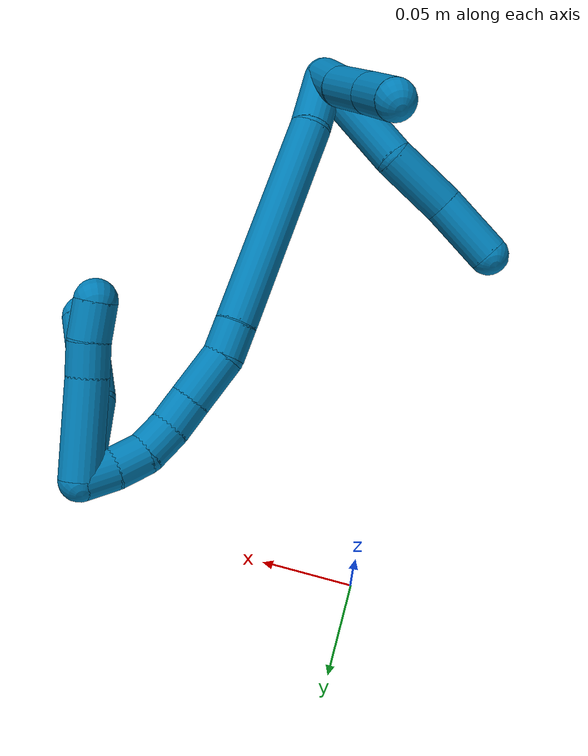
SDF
<sdf version="1.7">
 <world name="default">
  <model name="9">
   <static>0</static>
   <link name="9">
    <collision name="collision-cylinder-e_1_2_8">
     <pose>-0.017697 -0.012523 0.024822 0.467239 -0.566849 -0.138401</pose>
     <geometry><cylinder><radius>0.0125</radius><length>0.065912</length></cylinder></geometry>
     <surface>
      <friction><ode><mu>1.16</mu><mu2>1.16</mu2><slip1>0</slip1><slip2>0</slip2></ode></friction>
      <contact><ode><kp>1e+06</kp><kd>1</kd><max_vel>0</max_vel><min_depth>0.001</min_depth></ode></contact>
     </surface>
    </collision>
    <visual name="visual-cylinder-e_1_2_8">
     <pose>-0.017697 -0.012523 0.024822 0.467239 -0.566849 -0.138401</pose>
     <geometry><cylinder><radius>0.0125</radius><length>0.065912</length></cylinder></geometry>
     <material><ambient>0 0.490196 0.709804 1</ambient></material>
    </visual>
    <collision name="collision-cylinder-e_2_8_9">
     <pose>-0.050174 -0.036201 0.060479 0.799948 -0.759961 -0.334539</pose>
     <geometry><cylinder><radius>0.0125</radius><length>0.042911</length></cylinder></geometry>
     <surface>
      <friction><ode><mu>1.16</mu><mu2>1.16</mu2><slip1>0</slip1><slip2>0</slip2></ode></friction>
      <contact><ode><kp>1e+06</kp><kd>1</kd><max_vel>0</max_vel><min_depth>0.001</min_depth></ode></contact>
     </surface>
    </collision>
    <visual name="visual-cylinder-e_2_8_9">
     <pose>-0.050174 -0.036201 0.060479 0.799948 -0.759961 -0.334539</pose>
     <geometry><cylinder><radius>0.0125</radius><length>0.042911</length></cylinder></geometry>
     <material><ambient>0 0.490196 0.709804 1</ambient></material>
    </visual>
    <collision name="collision-cylinder-e_3_9_6">
     <pose>-0.077674 -0.056136 0.084918 0.573154 -0.665956 -0.203138</pose>
     <geometry><cylinder><radius>0.0125</radius><length>0.041177</length></cylinder></geometry>
     <surface>
      <friction><ode><mu>1.16</mu><mu2>1.16</mu2><slip1>0</slip1><slip2>0</slip2></ode></friction>
      <contact><ode><kp>1e+06</kp><kd>1</kd><max_vel>0</max_vel><min_depth>0.001</min_depth></ode></contact>
     </surface>
    </collision>
    <visual name="visual-cylinder-e_3_9_6">
     <pose>-0.077674 -0.056136 0.084918 0.573154 -0.665956 -0.203138</pose>
     <geometry><cylinder><radius>0.0125</radius><length>0.041177</length></cylinder></geometry>
     <material><ambient>0 0.490196 0.709804 1</ambient></material>
    </visual>
    <collision name="collision-cylinder-e_1_2_10">
     <pose>0.003931 -0.001992 0.013199 0.149799 0.286372 0.021637</pose>
     <geometry><cylinder><radius>0.0125</radius><length>0.027831</length></cylinder></geometry>
     <surface>
      <friction><ode><mu>1.16</mu><mu2>1.16</mu2><slip1>0</slip1><slip2>0</slip2></ode></friction>
      <contact><ode><kp>1e+06</kp><kd>1</kd><max_vel>0</max_vel><min_depth>0.001</min_depth></ode></contact>
     </surface>
    </collision>
    <visual name="visual-cylinder-e_1_2_10">
     <pose>0.003931 -0.001992 0.013199 0.149799 0.286372 0.021637</pose>
     <geometry><cylinder><radius>0.0125</radius><length>0.027831</length></cylinder></geometry>
     <material><ambient>0 0.490196 0.709804 1</ambient></material>
    </visual>
    <collision name="collision-cylinder-e_2_10_11">
     <pose>0.014596 -0.00858 0.044358 0.250523 0.348455 0.04432</pose>
     <geometry><cylinder><radius>0.0125</radius><length>0.039446</length></cylinder></geometry>
     <surface>
      <friction><ode><mu>1.16</mu><mu2>1.16</mu2><slip1>0</slip1><slip2>0</slip2></ode></friction>
      <contact><ode><kp>1e+06</kp><kd>1</kd><max_vel>0</max_vel><min_depth>0.001</min_depth></ode></contact>
     </surface>
    </collision>
    <visual name="visual-cylinder-e_2_10_11">
     <pose>0.014596 -0.00858 0.044358 0.250523 0.348455 0.04432</pose>
     <geometry><cylinder><radius>0.0125</radius><length>0.039446</length></cylinder></geometry>
     <material><ambient>0 0.490196 0.709804 1</ambient></material>
    </visual>
    <collision name="collision-cylinder-e_3_11_5">
     <pose>0.027193 -0.016251 0.077279 0.202744 0.366449 0.037694</pose>
     <geometry><cylinder><radius>0.0125</radius><length>0.032723</length></cylinder></geometry>
     <surface>
      <friction><ode><mu>1.16</mu><mu2>1.16</mu2><slip1>0</slip1><slip2>0</slip2></ode></friction>
      <contact><ode><kp>1e+06</kp><kd>1</kd><max_vel>0</max_vel><min_depth>0.001</min_depth></ode></contact>
     </surface>
    </collision>
    <visual name="visual-cylinder-e_3_11_5">
     <pose>0.027193 -0.016251 0.077279 0.202744 0.366449 0.037694</pose>
     <geometry><cylinder><radius>0.0125</radius><length>0.032723</length></cylinder></geometry>
     <material><ambient>0 0.490196 0.709804 1</ambient></material>
    </visual>
    <collision name="collision-cylinder-e_1_2_12">
     <pose>-0.005823 0.009501 0.015116 -0.561159 -0.315259 0.091548</pose>
     <geometry><cylinder><radius>0.0125</radius><length>0.03756</length></cylinder></geometry>
     <surface>
      <friction><ode><mu>1.16</mu><mu2>1.16</mu2><slip1>0</slip1><slip2>0</slip2></ode></friction>
      <contact><ode><kp>1e+06</kp><kd>1</kd><max_vel>0</max_vel><min_depth>0.001</min_depth></ode></contact>
     </surface>
    </collision>
    <visual name="visual-cylinder-e_1_2_12">
     <pose>-0.005823 0.009501 0.015116 -0.561159 -0.315259 0.091548</pose>
     <geometry><cylinder><radius>0.0125</radius><length>0.03756</length></cylinder></geometry>
     <material><ambient>0 0.490196 0.709804 1</ambient></material>
    </visual>
    <collision name="collision-cylinder-e_2_12_13">
     <pose>-0.040695 0.057821 0.073557 -0.73058 -0.463149 0.179883</pose>
     <geometry><cylinder><radius>0.0125</radius><length>0.130042</length></cylinder></geometry>
     <surface>
      <friction><ode><mu>1.16</mu><mu2>1.16</mu2><slip1>0</slip1><slip2>0</slip2></ode></friction>
      <contact><ode><kp>1e+06</kp><kd>1</kd><max_vel>0</max_vel><min_depth>0.001</min_depth></ode></contact>
     </surface>
    </collision>
    <visual name="visual-cylinder-e_2_12_13">
     <pose>-0.040695 0.057821 0.073557 -0.73058 -0.463149 0.179883</pose>
     <geometry><cylinder><radius>0.0125</radius><length>0.130042</length></cylinder></geometry>
     <material><ambient>0 0.490196 0.709804 1</ambient></material>
    </visual>
    <collision name="collision-cylinder-e_3_13_14">
     <pose>-0.074893 0.10286 0.123199 -0.777871 -0.526057 0.219808</pose>
     <geometry><cylinder><radius>0.0125</radius><length>0.020505</length></cylinder></geometry>
     <surface>
      <friction><ode><mu>1.16</mu><mu2>1.16</mu2><slip1>0</slip1><slip2>0</slip2></ode></friction>
      <contact><ode><kp>1e+06</kp><kd>1</kd><max_vel>0</max_vel><min_depth>0.001</min_depth></ode></contact>
     </surface>
    </collision>
    <visual name="visual-cylinder-e_3_13_14">
     <pose>-0.074893 0.10286 0.123199 -0.777871 -0.526057 0.219808</pose>
     <geometry><cylinder><radius>0.0125</radius><length>0.020505</length></cylinder></geometry>
     <material><ambient>0 0.490196 0.709804 1</ambient></material>
    </visual>
    <collision name="collision-cylinder-e_4_14_15">
     <pose>-0.086099 0.121762 0.13668 -1.05648 -0.39419 0.232012</pose>
     <geometry><cylinder><radius>0.0125</radius><length>0.031547</length></cylinder></geometry>
     <surface>
      <friction><ode><mu>1.16</mu><mu2>1.16</mu2><slip1>0</slip1><slip2>0</slip2></ode></friction>
      <contact><ode><kp>1e+06</kp><kd>1</kd><max_vel>0</max_vel><min_depth>0.001</min_depth></ode></contact>
     </surface>
    </collision>
    <visual name="visual-cylinder-e_4_14_15">
     <pose>-0.086099 0.121762 0.13668 -1.05648 -0.39419 0.232012</pose>
     <geometry><cylinder><radius>0.0125</radius><length>0.031547</length></cylinder></geometry>
     <material><ambient>0 0.490196 0.709804 1</ambient></material>
    </visual>
    <collision name="collision-cylinder-e_5_15_16">
     <pose>-0.095606 0.142455 0.148905 -1.00753 -0.349028 0.193753</pose>
     <geometry><cylinder><radius>0.0125</radius><length>0.02017</length></cylinder></geometry>
     <surface>
      <friction><ode><mu>1.16</mu><mu2>1.16</mu2><slip1>0</slip1><slip2>0</slip2></ode></friction>
      <contact><ode><kp>1e+06</kp><kd>1</kd><max_vel>0</max_vel><min_depth>0.001</min_depth></ode></contact>
     </surface>
    </collision>
    <visual name="visual-cylinder-e_5_15_16">
     <pose>-0.095606 0.142455 0.148905 -1.00753 -0.349028 0.193753</pose>
     <geometry><cylinder><radius>0.0125</radius><length>0.02017</length></cylinder></geometry>
     <material><ambient>0 0.490196 0.709804 1</ambient></material>
    </visual>
    <collision name="collision-cylinder-e_6_16_17">
     <pose>-0.100476 0.158884 0.159283 -1.00722 -0.141848 0.07825</pose>
     <geometry><cylinder><radius>0.0125</radius><length>0.020112</length></cylinder></geometry>
     <surface>
      <friction><ode><mu>1.16</mu><mu2>1.16</mu2><slip1>0</slip1><slip2>0</slip2></ode></friction>
      <contact><ode><kp>1e+06</kp><kd>1</kd><max_vel>0</max_vel><min_depth>0.001</min_depth></ode></contact>
     </surface>
    </collision>
    <visual name="visual-cylinder-e_6_16_17">
     <pose>-0.100476 0.158884 0.159283 -1.00722 -0.141848 0.07825</pose>
     <geometry><cylinder><radius>0.0125</radius><length>0.020112</length></cylinder></geometry>
     <material><ambient>0 0.490196 0.709804 1</ambient></material>
    </visual>
    <collision name="collision-cylinder-e_7_17_18">
     <pose>-0.100982 0.176722 0.167843 -1.2395 0.091623 -0.065399</pose>
     <geometry><cylinder><radius>0.0125</radius><length>0.020013</length></cylinder></geometry>
     <surface>
      <friction><ode><mu>1.16</mu><mu2>1.16</mu2><slip1>0</slip1><slip2>0</slip2></ode></friction>
      <contact><ode><kp>1e+06</kp><kd>1</kd><max_vel>0</max_vel><min_depth>0.001</min_depth></ode></contact>
     </surface>
    </collision>
    <visual name="visual-cylinder-e_7_17_18">
     <pose>-0.100982 0.176722 0.167843 -1.2395 0.091623 -0.065399</pose>
     <geometry><cylinder><radius>0.0125</radius><length>0.020013</length></cylinder></geometry>
     <material><ambient>0 0.490196 0.709804 1</ambient></material>
    </visual>
    <collision name="collision-cylinder-e_8_18_1">
     <pose>-0.097527 0.195467 0.173755 -1.29171 0.256163 -0.193521</pose>
     <geometry><cylinder><radius>0.0125</radius><length>0.020051</length></cylinder></geometry>
     <surface>
      <friction><ode><mu>1.16</mu><mu2>1.16</mu2><slip1>0</slip1><slip2>0</slip2></ode></friction>
      <contact><ode><kp>1e+06</kp><kd>1</kd><max_vel>0</max_vel><min_depth>0.001</min_depth></ode></contact>
     </surface>
    </collision>
    <visual name="visual-cylinder-e_8_18_1">
     <pose>-0.097527 0.195467 0.173755 -1.29171 0.256163 -0.193521</pose>
     <geometry><cylinder><radius>0.0125</radius><length>0.020051</length></cylinder></geometry>
     <material><ambient>0 0.490196 0.709804 1</ambient></material>
    </visual>
    <collision name="collision-cylinder-e_1_1_19">
     <pose>-0.086057 0.195636 0.155915 2.72182 0.378377 1.46437</pose>
     <geometry><cylinder><radius>0.0125</radius><length>0.048344</length></cylinder></geometry>
     <surface>
      <friction><ode><mu>1.16</mu><mu2>1.16</mu2><slip1>0</slip1><slip2>0</slip2></ode></friction>
      <contact><ode><kp>1e+06</kp><kd>1</kd><max_vel>0</max_vel><min_depth>0.001</min_depth></ode></contact>
     </surface>
    </collision>
    <visual name="visual-cylinder-e_1_1_19">
     <pose>-0.086057 0.195636 0.155915 2.72182 0.378377 1.46437</pose>
     <geometry><cylinder><radius>0.0125</radius><length>0.048344</length></cylinder></geometry>
     <material><ambient>0 0.490196 0.709804 1</ambient></material>
    </visual>
    <collision name="collision-cylinder-e_2_19_4">
     <pose>-0.066591 0.183606 0.111998 3.01939 0.420228 2.58285</pose>
     <geometry><cylinder><radius>0.0125</radius><length>0.051656</length></cylinder></geometry>
     <surface>
      <friction><ode><mu>1.16</mu><mu2>1.16</mu2><slip1>0</slip1><slip2>0</slip2></ode></friction>
      <contact><ode><kp>1e+06</kp><kd>1</kd><max_vel>0</max_vel><min_depth>0.001</min_depth></ode></contact>
     </surface>
    </collision>
    <visual name="visual-cylinder-e_2_19_4">
     <pose>-0.066591 0.183606 0.111998 3.01939 0.420228 2.58285</pose>
     <geometry><cylinder><radius>0.0125</radius><length>0.051656</length></cylinder></geometry>
     <material><ambient>0 0.490196 0.709804 1</ambient></material>
    </visual>
    <collision name="collision-cylinder-e_1_1_20">
     <pose>-0.074393 0.19469 0.159056 2.61494 0.797687 2.00341</pose>
     <geometry><cylinder><radius>0.0125</radius><length>0.057544</length></cylinder></geometry>
     <surface>
      <friction><ode><mu>1.16</mu><mu2>1.16</mu2><slip1>0</slip1><slip2>0</slip2></ode></friction>
      <contact><ode><kp>1e+06</kp><kd>1</kd><max_vel>0</max_vel><min_depth>0.001</min_depth></ode></contact>
     </surface>
    </collision>
    <visual name="visual-cylinder-e_1_1_20">
     <pose>-0.074393 0.19469 0.159056 2.61494 0.797687 2.00341</pose>
     <geometry><cylinder><radius>0.0125</radius><length>0.057544</length></cylinder></geometry>
     <material><ambient>0 0.490196 0.709804 1</ambient></material>
    </visual>
    <collision name="collision-cylinder-e_2_20_21">
     <pose>-0.046033 0.181271 0.136279 2.59087 0.885843 2.0672</pose>
     <geometry><cylinder><radius>0.0125</radius><length>0.020058</length></cylinder></geometry>
     <surface>
      <friction><ode><mu>1.16</mu><mu2>1.16</mu2><slip1>0</slip1><slip2>0</slip2></ode></friction>
      <contact><ode><kp>1e+06</kp><kd>1</kd><max_vel>0</max_vel><min_depth>0.001</min_depth></ode></contact>
     </surface>
    </collision>
    <visual name="visual-cylinder-e_2_20_21">
     <pose>-0.046033 0.181271 0.136279 2.59087 0.885843 2.0672</pose>
     <geometry><cylinder><radius>0.0125</radius><length>0.020058</length></cylinder></geometry>
     <material><ambient>0 0.490196 0.709804 1</ambient></material>
    </visual>
    <collision name="collision-cylinder-e_3_21_3">
     <pose>-0.030286 0.172976 0.124791 2.45603 0.793165 1.73008</pose>
     <geometry><cylinder><radius>0.0125</radius><length>0.022398</length></cylinder></geometry>
     <surface>
      <friction><ode><mu>1.16</mu><mu2>1.16</mu2><slip1>0</slip1><slip2>0</slip2></ode></friction>
      <contact><ode><kp>1e+06</kp><kd>1</kd><max_vel>0</max_vel><min_depth>0.001</min_depth></ode></contact>
     </surface>
    </collision>
    <visual name="visual-cylinder-e_3_21_3">
     <pose>-0.030286 0.172976 0.124791 2.45603 0.793165 1.73008</pose>
     <geometry><cylinder><radius>0.0125</radius><length>0.022398</length></cylinder></geometry>
     <material><ambient>0 0.490196 0.709804 1</ambient></material>
    </visual>
    <collision name="collision-sphere-3">
     <pose>-0.022306 0.168001 0.118709 0 -0 0</pose>
     <geometry><sphere><radius>0.0125</radius></sphere></geometry>
     <surface>
      <friction><ode><mu>1.16</mu><mu2>1.16</mu2><slip1>0</slip1><slip2>0</slip2></ode></friction>
      <contact><ode><kp>1e+06</kp><kd>1</kd><max_vel>0</max_vel><min_depth>0.001</min_depth></ode></contact>
     </surface>
    </collision>
    <visual name="visual-sphere-3">
     <pose>-0.022306 0.168001 0.118709 0 -0 0</pose>
     <geometry><sphere><radius>0.0125</radius></sphere></geometry>
     <material><ambient>0 0.490196 0.709804 1</ambient></material>
    </visual>
    <collision name="collision-sphere-21">
     <pose>-0.038266 0.17795 0.130873 0 -0 0</pose>
     <geometry><sphere><radius>0.0125</radius></sphere></geometry>
     <surface>
      <friction><ode><mu>1.16</mu><mu2>1.16</mu2><slip1>0</slip1><slip2>0</slip2></ode></friction>
      <contact><ode><kp>1e+06</kp><kd>1</kd><max_vel>0</max_vel><min_depth>0.001</min_depth></ode></contact>
     </surface>
    </collision>
    <visual name="visual-sphere-21">
     <pose>-0.038266 0.17795 0.130873 0 -0 0</pose>
     <geometry><sphere><radius>0.0125</radius></sphere></geometry>
     <material><ambient>0 0.490196 0.709804 1</ambient></material>
    </visual>
    <collision name="collision-sphere-20">
     <pose>-0.0538 0.184591 0.141686 0 -0 0</pose>
     <geometry><sphere><radius>0.0125</radius></sphere></geometry>
     <surface>
      <friction><ode><mu>1.16</mu><mu2>1.16</mu2><slip1>0</slip1><slip2>0</slip2></ode></friction>
      <contact><ode><kp>1e+06</kp><kd>1</kd><max_vel>0</max_vel><min_depth>0.001</min_depth></ode></contact>
     </surface>
    </collision>
    <visual name="visual-sphere-20">
     <pose>-0.0538 0.184591 0.141686 0 -0 0</pose>
     <geometry><sphere><radius>0.0125</radius></sphere></geometry>
     <material><ambient>0 0.490196 0.709804 1</ambient></material>
    </visual>
    <collision name="collision-sphere-4">
     <pose>-0.056054 0.180732 0.088593 0 -0 0</pose>
     <geometry><sphere><radius>0.0125</radius></sphere></geometry>
     <surface>
      <friction><ode><mu>1.16</mu><mu2>1.16</mu2><slip1>0</slip1><slip2>0</slip2></ode></friction>
      <contact><ode><kp>1e+06</kp><kd>1</kd><max_vel>0</max_vel><min_depth>0.001</min_depth></ode></contact>
     </surface>
    </collision>
    <visual name="visual-sphere-4">
     <pose>-0.056054 0.180732 0.088593 0 -0 0</pose>
     <geometry><sphere><radius>0.0125</radius></sphere></geometry>
     <material><ambient>0 0.490196 0.709804 1</ambient></material>
    </visual>
    <collision name="collision-sphere-11">
     <pose>0.02133 -0.013176 0.062317 0 -0 0</pose>
     <geometry><sphere><radius>0.0125</radius></sphere></geometry>
     <surface>
      <friction><ode><mu>1.16</mu><mu2>1.16</mu2><slip1>0</slip1><slip2>0</slip2></ode></friction>
      <contact><ode><kp>1e+06</kp><kd>1</kd><max_vel>0</max_vel><min_depth>0.001</min_depth></ode></contact>
     </surface>
    </collision>
    <visual name="visual-sphere-11">
     <pose>0.02133 -0.013176 0.062317 0 -0 0</pose>
     <geometry><sphere><radius>0.0125</radius></sphere></geometry>
     <material><ambient>0 0.490196 0.709804 1</ambient></material>
    </visual>
    <collision name="collision-sphere-10">
     <pose>0.007862 -0.003984 0.026399 0 -0 0</pose>
     <geometry><sphere><radius>0.0125</radius></sphere></geometry>
     <surface>
      <friction><ode><mu>1.16</mu><mu2>1.16</mu2><slip1>0</slip1><slip2>0</slip2></ode></friction>
      <contact><ode><kp>1e+06</kp><kd>1</kd><max_vel>0</max_vel><min_depth>0.001</min_depth></ode></contact>
     </surface>
    </collision>
    <visual name="visual-sphere-10">
     <pose>0.007862 -0.003984 0.026399 0 -0 0</pose>
     <geometry><sphere><radius>0.0125</radius></sphere></geometry>
     <material><ambient>0 0.490196 0.709804 1</ambient></material>
    </visual>
    <collision name="collision-sphere-6">
     <pose>-0.090394 -0.064915 0.09852 0 -0 0</pose>
     <geometry><sphere><radius>0.0125</radius></sphere></geometry>
     <surface>
      <friction><ode><mu>1.16</mu><mu2>1.16</mu2><slip1>0</slip1><slip2>0</slip2></ode></friction>
      <contact><ode><kp>1e+06</kp><kd>1</kd><max_vel>0</max_vel><min_depth>0.001</min_depth></ode></contact>
     </surface>
    </collision>
    <visual name="visual-sphere-6">
     <pose>-0.090394 -0.064915 0.09852 0 -0 0</pose>
     <geometry><sphere><radius>0.0125</radius></sphere></geometry>
     <material><ambient>0 0.490196 0.709804 1</ambient></material>
    </visual>
    <collision name="collision-sphere-9">
     <pose>-0.064954 -0.047357 0.071315 0 -0 0</pose>
     <geometry><sphere><radius>0.0125</radius></sphere></geometry>
     <surface>
      <friction><ode><mu>1.16</mu><mu2>1.16</mu2><slip1>0</slip1><slip2>0</slip2></ode></friction>
      <contact><ode><kp>1e+06</kp><kd>1</kd><max_vel>0</max_vel><min_depth>0.001</min_depth></ode></contact>
     </surface>
    </collision>
    <visual name="visual-sphere-9">
     <pose>-0.064954 -0.047357 0.071315 0 -0 0</pose>
     <geometry><sphere><radius>0.0125</radius></sphere></geometry>
     <material><ambient>0 0.490196 0.709804 1</ambient></material>
    </visual>
    <collision name="collision-sphere-2">
     <geometry><sphere><radius>0.0125</radius></sphere></geometry>
     <surface>
      <friction><ode><mu>1.16</mu><mu2>1.16</mu2><slip1>0</slip1><slip2>0</slip2></ode></friction>
      <contact><ode><kp>1e+06</kp><kd>1</kd><max_vel>0</max_vel><min_depth>0.001</min_depth></ode></contact>
     </surface>
    </collision>
    <visual name="visual-sphere-2">
     <geometry><sphere><radius>0.0125</radius></sphere></geometry>
     <material><ambient>0 0.490196 0.709804 1</ambient></material>
    </visual>
    <collision name="collision-sphere-19">
     <pose>-0.077128 0.186481 0.135403 0 -0 0</pose>
     <geometry><sphere><radius>0.0125</radius></sphere></geometry>
     <surface>
      <friction><ode><mu>1.16</mu><mu2>1.16</mu2><slip1>0</slip1><slip2>0</slip2></ode></friction>
      <contact><ode><kp>1e+06</kp><kd>1</kd><max_vel>0</max_vel><min_depth>0.001</min_depth></ode></contact>
     </surface>
    </collision>
    <visual name="visual-sphere-19">
     <pose>-0.077128 0.186481 0.135403 0 -0 0</pose>
     <geometry><sphere><radius>0.0125</radius></sphere></geometry>
     <material><ambient>0 0.490196 0.709804 1</ambient></material>
    </visual>
    <collision name="collision-sphere-8">
     <pose>-0.035393 -0.025045 0.049643 0 -0 0</pose>
     <geometry><sphere><radius>0.0125</radius></sphere></geometry>
     <surface>
      <friction><ode><mu>1.16</mu><mu2>1.16</mu2><slip1>0</slip1><slip2>0</slip2></ode></friction>
      <contact><ode><kp>1e+06</kp><kd>1</kd><max_vel>0</max_vel><min_depth>0.001</min_depth></ode></contact>
     </surface>
    </collision>
    <visual name="visual-sphere-8">
     <pose>-0.035393 -0.025045 0.049643 0 -0 0</pose>
     <geometry><sphere><radius>0.0125</radius></sphere></geometry>
     <material><ambient>0 0.490196 0.709804 1</ambient></material>
    </visual>
    <collision name="collision-sphere-5">
     <pose>0.033055 -0.019327 0.092241 0 -0 0</pose>
     <geometry><sphere><radius>0.0125</radius></sphere></geometry>
     <surface>
      <friction><ode><mu>1.16</mu><mu2>1.16</mu2><slip1>0</slip1><slip2>0</slip2></ode></friction>
      <contact><ode><kp>1e+06</kp><kd>1</kd><max_vel>0</max_vel><min_depth>0.001</min_depth></ode></contact>
     </surface>
    </collision>
    <visual name="visual-sphere-5">
     <pose>0.033055 -0.019327 0.092241 0 -0 0</pose>
     <geometry><sphere><radius>0.0125</radius></sphere></geometry>
     <material><ambient>0 0.490196 0.709804 1</ambient></material>
    </visual>
    <collision name="collision-sphere-12">
     <pose>-0.011646 0.019003 0.030232 0 -0 0</pose>
     <geometry><sphere><radius>0.0125</radius></sphere></geometry>
     <surface>
      <friction><ode><mu>1.16</mu><mu2>1.16</mu2><slip1>0</slip1><slip2>0</slip2></ode></friction>
      <contact><ode><kp>1e+06</kp><kd>1</kd><max_vel>0</max_vel><min_depth>0.001</min_depth></ode></contact>
     </surface>
    </collision>
    <visual name="visual-sphere-12">
     <pose>-0.011646 0.019003 0.030232 0 -0 0</pose>
     <geometry><sphere><radius>0.0125</radius></sphere></geometry>
     <material><ambient>0 0.490196 0.709804 1</ambient></material>
    </visual>
    <collision name="collision-sphere-13">
     <pose>-0.069745 0.096638 0.116883 0 -0 0</pose>
     <geometry><sphere><radius>0.0125</radius></sphere></geometry>
     <surface>
      <friction><ode><mu>1.16</mu><mu2>1.16</mu2><slip1>0</slip1><slip2>0</slip2></ode></friction>
      <contact><ode><kp>1e+06</kp><kd>1</kd><max_vel>0</max_vel><min_depth>0.001</min_depth></ode></contact>
     </surface>
    </collision>
    <visual name="visual-sphere-13">
     <pose>-0.069745 0.096638 0.116883 0 -0 0</pose>
     <geometry><sphere><radius>0.0125</radius></sphere></geometry>
     <material><ambient>0 0.490196 0.709804 1</ambient></material>
    </visual>
    <collision name="collision-sphere-14">
     <pose>-0.080041 0.109082 0.129515 0 -0 0</pose>
     <geometry><sphere><radius>0.0125</radius></sphere></geometry>
     <surface>
      <friction><ode><mu>1.16</mu><mu2>1.16</mu2><slip1>0</slip1><slip2>0</slip2></ode></friction>
      <contact><ode><kp>1e+06</kp><kd>1</kd><max_vel>0</max_vel><min_depth>0.001</min_depth></ode></contact>
     </surface>
    </collision>
    <visual name="visual-sphere-14">
     <pose>-0.080041 0.109082 0.129515 0 -0 0</pose>
     <geometry><sphere><radius>0.0125</radius></sphere></geometry>
     <material><ambient>0 0.490196 0.709804 1</ambient></material>
    </visual>
    <collision name="collision-sphere-15">
     <pose>-0.092157 0.134442 0.143844 0 -0 0</pose>
     <geometry><sphere><radius>0.0125</radius></sphere></geometry>
     <surface>
      <friction><ode><mu>1.16</mu><mu2>1.16</mu2><slip1>0</slip1><slip2>0</slip2></ode></friction>
      <contact><ode><kp>1e+06</kp><kd>1</kd><max_vel>0</max_vel><min_depth>0.001</min_depth></ode></contact>
     </surface>
    </collision>
    <visual name="visual-sphere-15">
     <pose>-0.092157 0.134442 0.143844 0 -0 0</pose>
     <geometry><sphere><radius>0.0125</radius></sphere></geometry>
     <material><ambient>0 0.490196 0.709804 1</ambient></material>
    </visual>
    <collision name="collision-sphere-16">
     <pose>-0.099055 0.150468 0.153965 0 -0 0</pose>
     <geometry><sphere><radius>0.0125</radius></sphere></geometry>
     <surface>
      <friction><ode><mu>1.16</mu><mu2>1.16</mu2><slip1>0</slip1><slip2>0</slip2></ode></friction>
      <contact><ode><kp>1e+06</kp><kd>1</kd><max_vel>0</max_vel><min_depth>0.001</min_depth></ode></contact>
     </surface>
    </collision>
    <visual name="visual-sphere-16">
     <pose>-0.099055 0.150468 0.153965 0 -0 0</pose>
     <geometry><sphere><radius>0.0125</radius></sphere></geometry>
     <material><ambient>0 0.490196 0.709804 1</ambient></material>
    </visual>
    <collision name="collision-sphere-17">
     <pose>-0.101898 0.167299 0.164601 0 -0 0</pose>
     <geometry><sphere><radius>0.0125</radius></sphere></geometry>
     <surface>
      <friction><ode><mu>1.16</mu><mu2>1.16</mu2><slip1>0</slip1><slip2>0</slip2></ode></friction>
      <contact><ode><kp>1e+06</kp><kd>1</kd><max_vel>0</max_vel><min_depth>0.001</min_depth></ode></contact>
     </surface>
    </collision>
    <visual name="visual-sphere-17">
     <pose>-0.101898 0.167299 0.164601 0 -0 0</pose>
     <geometry><sphere><radius>0.0125</radius></sphere></geometry>
     <material><ambient>0 0.490196 0.709804 1</ambient></material>
    </visual>
    <collision name="collision-sphere-18">
     <pose>-0.100067 0.186144 0.171084 0 -0 0</pose>
     <geometry><sphere><radius>0.0125</radius></sphere></geometry>
     <surface>
      <friction><ode><mu>1.16</mu><mu2>1.16</mu2><slip1>0</slip1><slip2>0</slip2></ode></friction>
      <contact><ode><kp>1e+06</kp><kd>1</kd><max_vel>0</max_vel><min_depth>0.001</min_depth></ode></contact>
     </surface>
    </collision>
    <visual name="visual-sphere-18">
     <pose>-0.100067 0.186144 0.171084 0 -0 0</pose>
     <geometry><sphere><radius>0.0125</radius></sphere></geometry>
     <material><ambient>0 0.490196 0.709804 1</ambient></material>
    </visual>
    <collision name="collision-sphere-1">
     <pose>-0.094987 0.20479 0.176427 0 -0 0</pose>
     <geometry><sphere><radius>0.0125</radius></sphere></geometry>
     <surface>
      <friction><ode><mu>1.16</mu><mu2>1.16</mu2><slip1>0</slip1><slip2>0</slip2></ode></friction>
      <contact><ode><kp>1e+06</kp><kd>1</kd><max_vel>0</max_vel><min_depth>0.001</min_depth></ode></contact>
     </surface>
    </collision>
    <visual name="visual-sphere-1">
     <pose>-0.094987 0.20479 0.176427 0 -0 0</pose>
     <geometry><sphere><radius>0.0125</radius></sphere></geometry>
     <material><ambient>0 0.490196 0.709804 1</ambient></material>
    </visual>
    <inertial>
     <pose>-0.048152 0.079188 0.093866 0 -0 0</pose>
     <mass>0.75</mass>
     <inertia><ixx>0.000266</ixx><ixy>0</ixy><ixz>0</ixz><iyy>0.000298</iyy><iyz>0</iyz><izz>1e-05</izz></inertia>
    </inertial>
   </link>
   <pose>0.091064 -0.288457 0.059089 -0.188842 -1.20252 -0.839887</pose>
  </model>
 </world>
</sdf>
